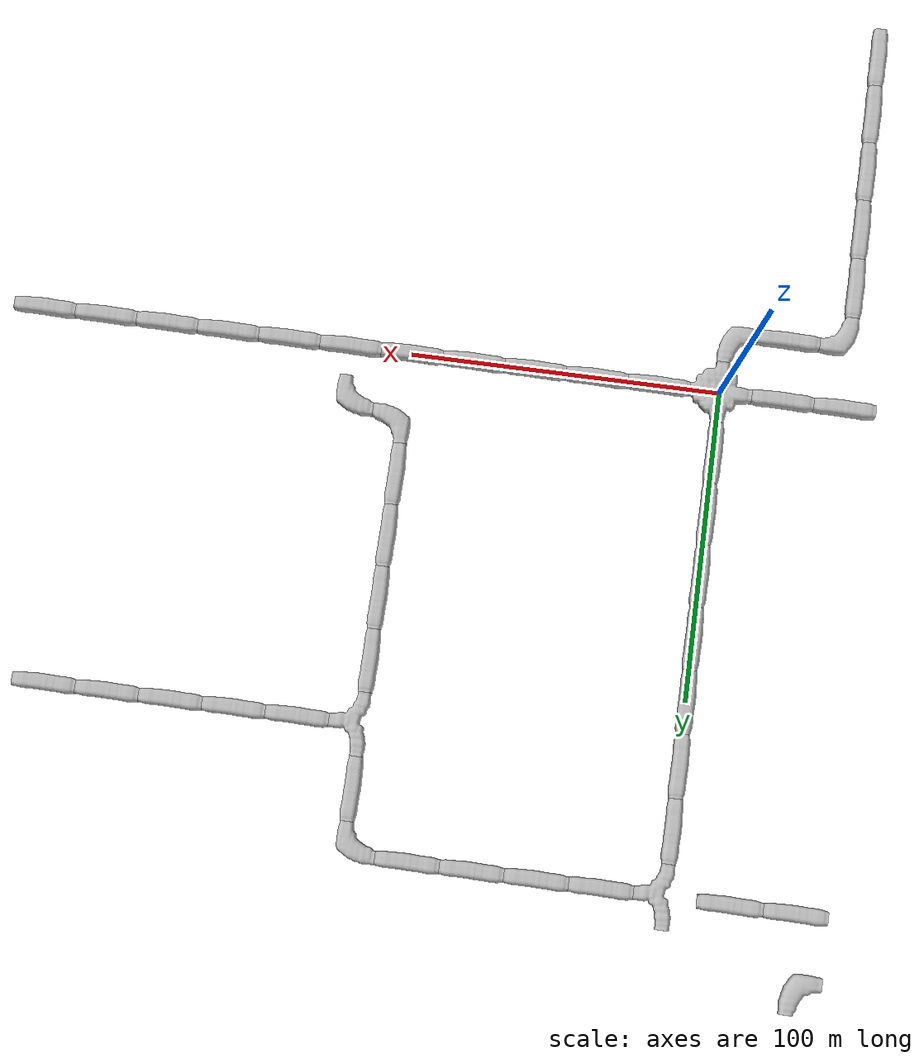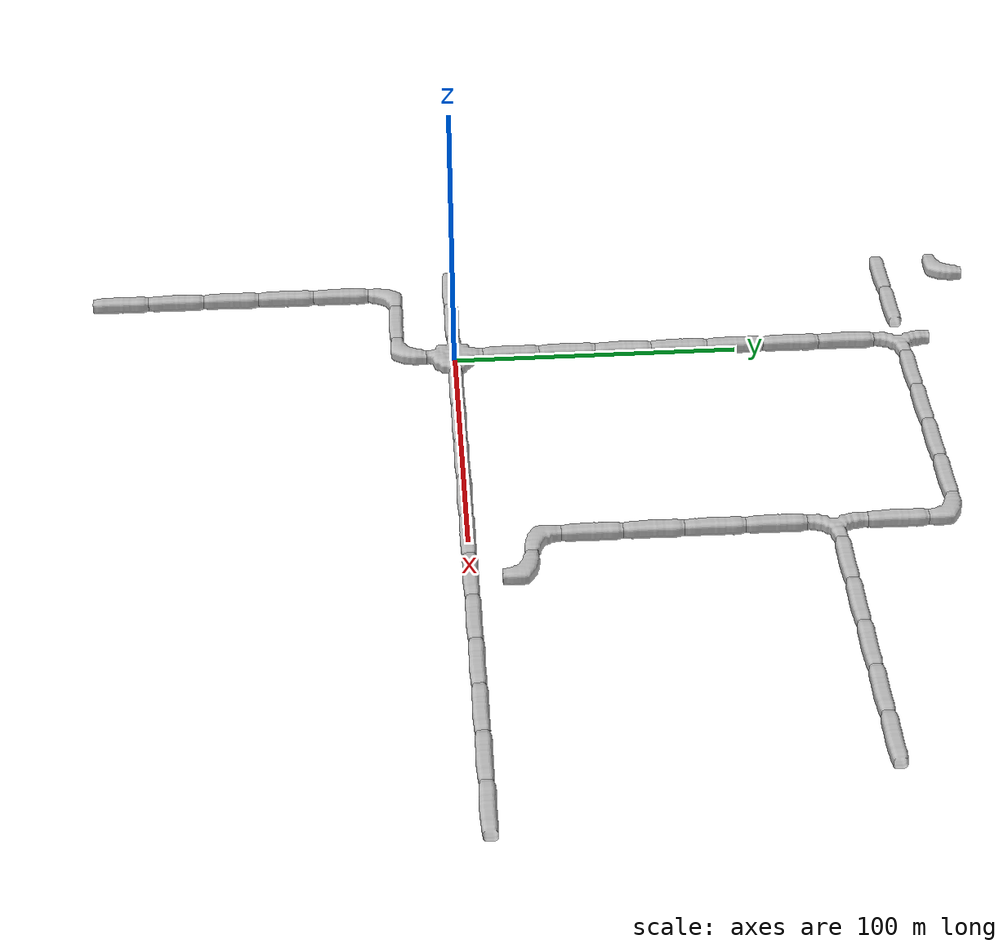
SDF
<sdf version="1.6">
 <world name="cave_16000">
  <include>
   <static>true</static>
   <name>cave_0_0</name>
   <pose>0 0 0 0 0 -1.5707963267948966</pose>
   <uri>model://cave_4way_20m</uri>
  </include>
  <include>
   <static>true</static>
   <name>cave_1_0</name>
   <pose>20 0 0 0 0 1.5707963267948966</pose>
   <uri>model://cave_straight_20m</uri>
  </include>
  <include>
   <static>true</static>
   <name>cave_2_0</name>
   <pose>40 0 0 0 0 1.5707963267948966</pose>
   <uri>model://cave_straight_20m</uri>
  </include>
  <include>
   <static>true</static>
   <name>cave_3_0</name>
   <pose>60 0 0 0 0 1.5707963267948966</pose>
   <uri>model://cave_straight_20m</uri>
  </include>
  <include>
   <static>true</static>
   <name>cave_4_0</name>
   <pose>80 0 0 0 0 1.5707963267948966</pose>
   <uri>model://cave_straight_20m</uri>
  </include>
  <include>
   <static>true</static>
   <name>cave_5_0</name>
   <pose>100 0 0 0 0 1.5707963267948966</pose>
   <uri>model://cave_straight_20m</uri>
  </include>
  <include>
   <static>true</static>
   <name>cave_6_0</name>
   <pose>120 0 0 0 0 1.5707963267948966</pose>
   <uri>model://cave_straight_20m</uri>
  </include>
  <include>
   <static>true</static>
   <name>cave_7_0</name>
   <pose>140 0 0 0 0 1.5707963267948966</pose>
   <uri>model://cave_straight_20m</uri>
  </include>
  <include>
   <static>true</static>
   <name>cave_8_0</name>
   <pose>160 0 0 0 0 1.5707963267948966</pose>
   <uri>model://cave_straight_20m</uri>
  </include>
  <include>
   <static>true</static>
   <name>cave_9_0</name>
   <pose>180 0 0 0 0 1.5707963267948966</pose>
   <uri>model://cave_straight_20m</uri>
  </include>
  <include>
   <static>true</static>
   <name>cave_10_0</name>
   <pose>200 0 0 0 0 1.5707963267948966</pose>
   <uri>model://cave_straight_20m</uri>
  </include>
  <include>
   <static>true</static>
   <name>cave_11_0</name>
   <pose>220 0 0 0 0 1.5707963267948966</pose>
   <uri>model://cave_straight_20m</uri>
  </include>
  <include>
   <static>true</static>
   <name>cave_0_-1</name>
   <pose>0 -20 0 0 0 1.5707963267948966</pose>
   <uri>model://cave_L_20m</uri>
  </include>
  <include>
   <static>true</static>
   <name>cave_-1_-1</name>
   <pose>-20 -20 0 0 0 1.5707963267948966</pose>
   <uri>model://cave_straight_20m</uri>
  </include>
  <include>
   <static>true</static>
   <name>cave_-2_-1</name>
   <pose>-40 -20 0 0 0 -1.5707963267948966</pose>
   <uri>model://cave_L_20m</uri>
  </include>
  <include>
   <static>true</static>
   <name>cave_-2_-2</name>
   <pose>-40 -40 0 0 0 0.0</pose>
   <uri>model://cave_straight_20m</uri>
  </include>
  <include>
   <static>true</static>
   <name>cave_-2_-3</name>
   <pose>-40 -60 0 0 0 0.0</pose>
   <uri>model://cave_straight_20m</uri>
  </include>
  <include>
   <static>true</static>
   <name>cave_-2_-4</name>
   <pose>-40 -80 0 0 0 0.0</pose>
   <uri>model://cave_straight_20m</uri>
  </include>
  <include>
   <static>true</static>
   <name>cave_-2_-5</name>
   <pose>-40 -100 0 0 0 0.0</pose>
   <uri>model://cave_straight_20m</uri>
  </include>
  <include>
   <static>true</static>
   <name>cave_-2_-6</name>
   <pose>-40 -120 0 0 0 0.0</pose>
   <uri>model://cave_straight_20m</uri>
  </include>
  <include>
   <static>true</static>
   <name>cave_-1_0</name>
   <pose>-20 0 0 0 0 1.5707963267948966</pose>
   <uri>model://cave_straight_20m</uri>
  </include>
  <include>
   <static>true</static>
   <name>cave_-2_0</name>
   <pose>-40 0 0 0 0 1.5707963267948966</pose>
   <uri>model://cave_straight_20m</uri>
  </include>
  <include>
   <static>true</static>
   <name>cave_0_1</name>
   <pose>0 20 0 0 0 0.0</pose>
   <uri>model://cave_straight_20m</uri>
  </include>
  <include>
   <static>true</static>
   <name>cave_0_2</name>
   <pose>0 40 0 0 0 0.0</pose>
   <uri>model://cave_straight_20m</uri>
  </include>
  <include>
   <static>true</static>
   <name>cave_0_3</name>
   <pose>0 60 0 0 0 0.0</pose>
   <uri>model://cave_straight_20m</uri>
  </include>
  <include>
   <static>true</static>
   <name>cave_0_4</name>
   <pose>0 80 0 0 0 0.0</pose>
   <uri>model://cave_straight_20m</uri>
  </include>
  <include>
   <static>true</static>
   <name>cave_0_5</name>
   <pose>0 100 0 0 0 0.0</pose>
   <uri>model://cave_straight_20m</uri>
  </include>
  <include>
   <static>true</static>
   <name>cave_0_6</name>
   <pose>0 120 0 0 0 0.0</pose>
   <uri>model://cave_straight_20m</uri>
  </include>
  <include>
   <static>true</static>
   <name>cave_0_7</name>
   <pose>0 140 0 0 0 0.0</pose>
   <uri>model://cave_straight_20m</uri>
  </include>
  <include>
   <static>true</static>
   <name>cave_0_8</name>
   <pose>0 160 0 0 0 -1.5707963267948966</pose>
   <uri>model://cave_3way_20m</uri>
  </include>
  <include>
   <static>true</static>
   <name>cave_1_8</name>
   <pose>20 160 0 0 0 1.5707963267948966</pose>
   <uri>model://cave_straight_20m</uri>
  </include>
  <include>
   <static>true</static>
   <name>cave_2_8</name>
   <pose>40 160 0 0 0 1.5707963267948966</pose>
   <uri>model://cave_straight_20m</uri>
  </include>
  <include>
   <static>true</static>
   <name>cave_3_8</name>
   <pose>60 160 0 0 0 1.5707963267948966</pose>
   <uri>model://cave_straight_20m</uri>
  </include>
  <include>
   <static>true</static>
   <name>cave_4_8</name>
   <pose>80 160 0 0 0 1.5707963267948966</pose>
   <uri>model://cave_straight_20m</uri>
  </include>
  <include>
   <static>true</static>
   <name>cave_5_8</name>
   <pose>100 160 0 0 0 3.141592653589793</pose>
   <uri>model://cave_L_20m</uri>
  </include>
  <include>
   <static>true</static>
   <name>cave_5_7</name>
   <pose>100 140 0 0 0 0.0</pose>
   <uri>model://cave_straight_20m</uri>
  </include>
  <include>
   <static>true</static>
   <name>cave_5_6</name>
   <pose>100 120 0 0 0 -1.5707963267948966</pose>
   <uri>model://cave_3way_20m</uri>
  </include>
  <include>
   <static>true</static>
   <name>cave_6_6</name>
   <pose>120 120 0 0 0 1.5707963267948966</pose>
   <uri>model://cave_straight_20m</uri>
  </include>
  <include>
   <static>true</static>
   <name>cave_7_6</name>
   <pose>140 120 0 0 0 1.5707963267948966</pose>
   <uri>model://cave_straight_20m</uri>
  </include>
  <include>
   <static>true</static>
   <name>cave_8_6</name>
   <pose>160 120 0 0 0 1.5707963267948966</pose>
   <uri>model://cave_straight_20m</uri>
  </include>
  <include>
   <static>true</static>
   <name>cave_9_6</name>
   <pose>180 120 0 0 0 1.5707963267948966</pose>
   <uri>model://cave_straight_20m</uri>
  </include>
  <include>
   <static>true</static>
   <name>cave_10_6</name>
   <pose>200 120 0 0 0 1.5707963267948966</pose>
   <uri>model://cave_straight_20m</uri>
  </include>
  <include>
   <static>true</static>
   <name>cave_5_5</name>
   <pose>100 100 0 0 0 0.0</pose>
   <uri>model://cave_straight_20m</uri>
  </include>
  <include>
   <static>true</static>
   <name>cave_5_4</name>
   <pose>100 80 0 0 0 0.0</pose>
   <uri>model://cave_straight_20m</uri>
  </include>
  <include>
   <static>true</static>
   <name>cave_5_3</name>
   <pose>100 60 0 0 0 0.0</pose>
   <uri>model://cave_straight_20m</uri>
  </include>
  <include>
   <static>true</static>
   <name>cave_5_2</name>
   <pose>100 40 0 0 0 0.0</pose>
   <uri>model://cave_straight_20m</uri>
  </include>
  <include>
   <static>true</static>
   <name>cave_5_1</name>
   <pose>100 20 0 0 0 0.0</pose>
   <uri>model://cave_L_20m</uri>
  </include>
  <include>
   <static>true</static>
   <name>cave_6_1</name>
   <pose>120 20 0 0 0 3.141592653589793</pose>
   <uri>model://cave_L_20m</uri>
  </include>
  <include>
   <static>true</static>
   <name>cave_-2_9</name>
   <pose>-40 180 0 0 0 1.5707963267948966</pose>
   <uri>model://cave_L_20m</uri>
  </include>
  <include>
   <static>true</static>
   <name>cave_-2_8</name>
   <pose>-40 160 0 0 0 1.5707963267948966</pose>
   <uri>model://cave_straight_20m</uri>
  </include>
  <include>
   <static>true</static>
   <name>cave_-1_8</name>
   <pose>-20 160 0 0 0 1.5707963267948966</pose>
   <uri>model://cave_straight_20m</uri>
  </include>
 </world>
</sdf>
